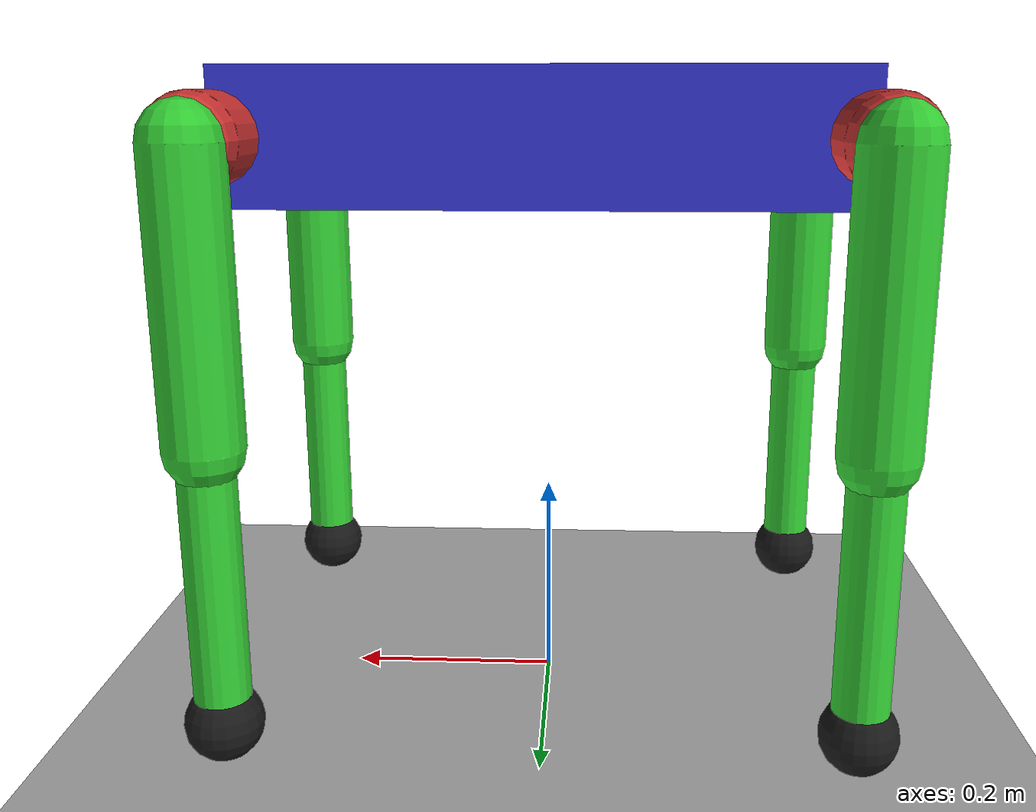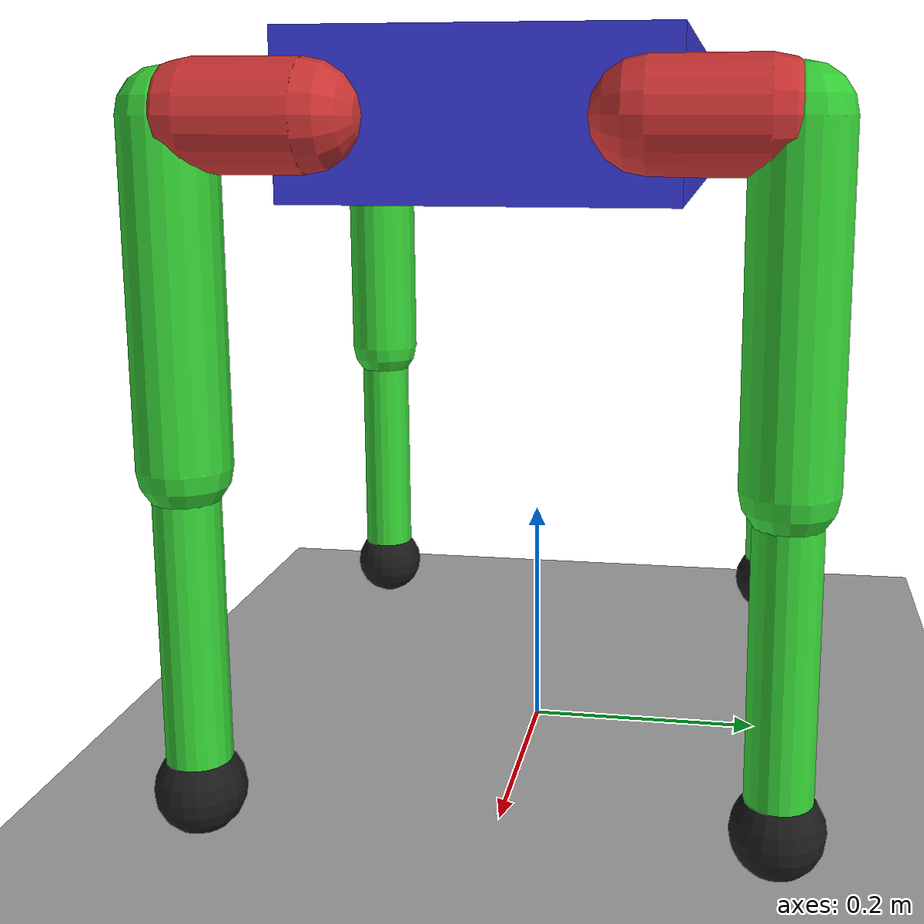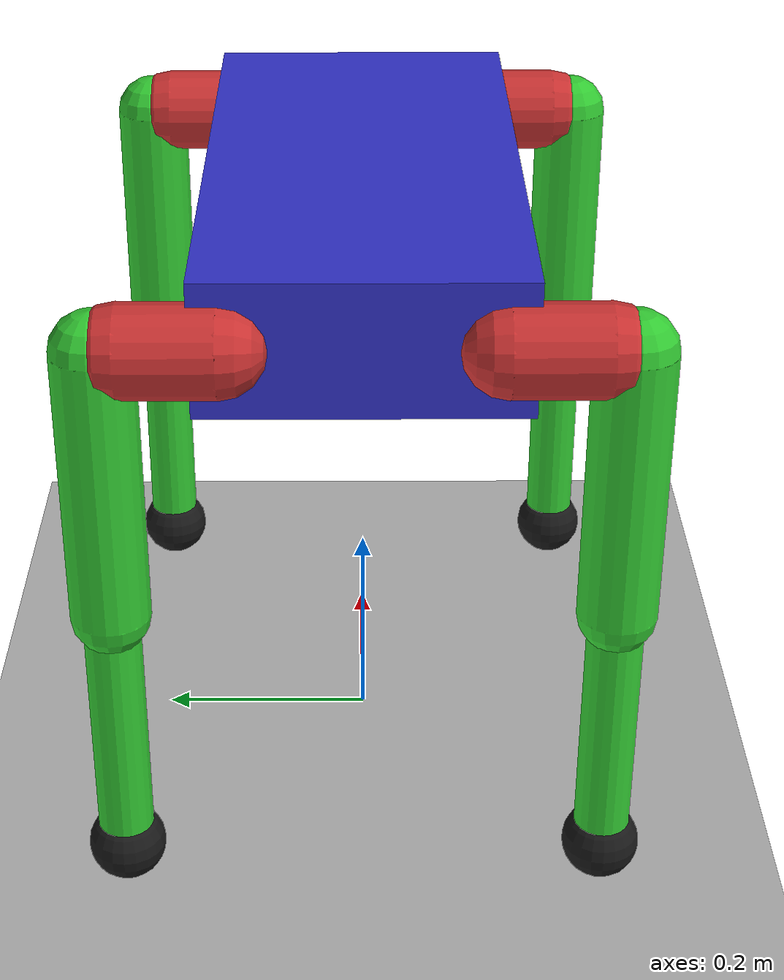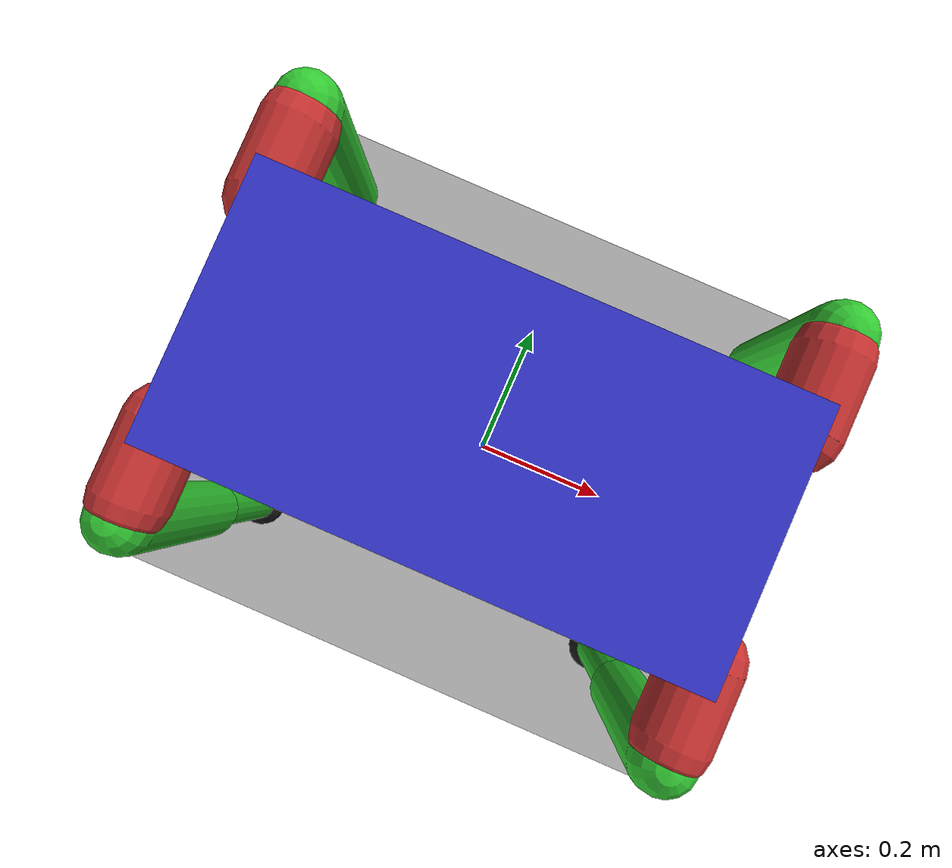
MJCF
<mujoco model="anymal_simplified">
        <compiler angle="radian" coordinate="local" inertiafromgeom="true"/>

        <option timestep="0.001" gravity="0 0 -9.81" iterations="50" solver="Newton" tolerance="1e-10"/>

        <default>
            <geom rgba="0.7 0.7 0.7 1" friction="1.0 0.005 0.0001" condim="3"/>
            <joint damping="1.0" armature="0.01" frictionloss="0.1"/>
            <motor ctrlrange="-200 200" ctrllimited="true"/>
        </default>

        <asset>
            <texture name="grid" type="2d" builtin="checker" width="512" height="512"
                     rgb1=".1 .2 .3" rgb2=".2 .3 .4"/>
            <material name="grid" texture="grid" texrepeat="2 2" texuniform="true" reflectance=".2"/>
            <texture name="skybox" type="skybox" builtin="gradient" rgb1=".4 .6 .8" rgb2="0 0 0"
                     width="800" height="800" mark="random" markrgb="1 1 1"/>
        </asset>

        <worldbody>
            <light pos="0 0 3" dir="0 0 -1" diffuse="0.8 0.8 0.8" specular="0.2 0.2 0.2"/>
            <geom name="floor" size="20 20 .05" type="plane" material="grid"/>

            <!-- ANYmal-like Base -->
            <body name="base" pos="0 0 0.55">
                <freejoint/>
                <inertial pos="0 0 0" mass="16.0" diaginertia="0.5 1.0 1.0"/>
                <geom name="torso" type="box" size="0.28 0.14 0.06" rgba="0.2 0.2 0.8 1"/>

                <!-- LF Leg (Left Front) -->
                <body name="LF_HIP" pos="0.277 0.116 0">
                    <inertial pos="0 0.04 0" mass="1.42" diaginertia="0.01 0.01 0.01"/>
                    <joint name="LF_HAA" type="hinge" axis="1 0 0" range="-0.4 0.4" damping="2.0"/>
                    <geom type="capsule" fromto="0 0 0 0 0.08 0" size="0.04" rgba="0.8 0.2 0.2 1"/>

                    <body name="LF_THIGH" pos="0 0.1 0">
                        <inertial pos="0 0 -0.125" mass="1.634" diaginertia="0.02 0.02 0.001"/>
                        <joint name="LF_HFE" type="hinge" axis="0 1 0" range="-1.5 1.5" damping="2.0"/>
                        <geom type="capsule" fromto="0 0 0 0 0 -0.25" size="0.035" rgba="0.2 0.8 0.2 1"/>

                        <body name="LF_SHANK" pos="0 0 -0.25">
                            <inertial pos="0 0 -0.125" mass="0.207" diaginertia="0.005 0.005 0.0001"/>
                            <joint name="LF_KFE" type="hinge" axis="0 1 0" range="-2.6 -0.3" damping="1.0"/>
                            <geom type="capsule" fromto="0 0 0 0 0 -0.25" size="0.025" rgba="0.2 0.8 0.2 1"/>
                            <geom name="LF_FOOT" type="sphere" pos="0 0 -0.25" size="0.035" rgba="0.1 0.1 0.1 1" friction="1.5 0.01 0.001"/>
                        </body>
                    </body>
                </body>

                <!-- RF Leg (Right Front) -->
                <body name="RF_HIP" pos="0.277 -0.116 0">
                    <inertial pos="0 -0.04 0" mass="1.42" diaginertia="0.01 0.01 0.01"/>
                    <joint name="RF_HAA" type="hinge" axis="1 0 0" range="-0.4 0.4" damping="2.0"/>
                    <geom type="capsule" fromto="0 0 0 0 -0.08 0" size="0.04" rgba="0.8 0.2 0.2 1"/>

                    <body name="RF_THIGH" pos="0 -0.1 0">
                        <inertial pos="0 0 -0.125" mass="1.634" diaginertia="0.02 0.02 0.001"/>
                        <joint name="RF_HFE" type="hinge" axis="0 1 0" range="-1.5 1.5" damping="2.0"/>
                        <geom type="capsule" fromto="0 0 0 0 0 -0.25" size="0.035" rgba="0.2 0.8 0.2 1"/>

                        <body name="RF_SHANK" pos="0 0 -0.25">
                            <inertial pos="0 0 -0.125" mass="0.207" diaginertia="0.005 0.005 0.0001"/>
                            <joint name="RF_KFE" type="hinge" axis="0 1 0" range="-2.6 -0.3" damping="1.0"/>
                            <geom type="capsule" fromto="0 0 0 0 0 -0.25" size="0.025" rgba="0.2 0.8 0.2 1"/>
                            <geom name="RF_FOOT" type="sphere" pos="0 0 -0.25" size="0.035" rgba="0.1 0.1 0.1 1" friction="1.5 0.01 0.001"/>
                        </body>
                    </body>
                </body>

                <!-- LH Leg (Left Hind) -->
                <body name="LH_HIP" pos="-0.277 0.116 0">
                    <inertial pos="0 0.04 0" mass="1.42" diaginertia="0.01 0.01 0.01"/>
                    <joint name="LH_HAA" type="hinge" axis="1 0 0" range="-0.4 0.4" damping="2.0"/>
                    <geom type="capsule" fromto="0 0 0 0 0.08 0" size="0.04" rgba="0.8 0.2 0.2 1"/>

                    <body name="LH_THIGH" pos="0 0.1 0">
                        <inertial pos="0 0 -0.125" mass="1.634" diaginertia="0.02 0.02 0.001"/>
                        <joint name="LH_HFE" type="hinge" axis="0 1 0" range="-1.5 1.5" damping="2.0"/>
                        <geom type="capsule" fromto="0 0 0 0 0 -0.25" size="0.035" rgba="0.2 0.8 0.2 1"/>

                        <body name="LH_SHANK" pos="0 0 -0.25">
                            <inertial pos="0 0 -0.125" mass="0.207" diaginertia="0.005 0.005 0.0001"/>
                            <joint name="LH_KFE" type="hinge" axis="0 1 0" range="-2.6 -0.3" damping="1.0"/>
                            <geom type="capsule" fromto="0 0 0 0 0 -0.25" size="0.025" rgba="0.2 0.8 0.2 1"/>
                            <geom name="LH_FOOT" type="sphere" pos="0 0 -0.25" size="0.035" rgba="0.1 0.1 0.1 1" friction="1.5 0.01 0.001"/>
                        </body>
                    </body>
                </body>

                <!-- RH Leg (Right Hind) -->
                <body name="RH_HIP" pos="-0.277 -0.116 0">
                    <inertial pos="0 -0.04 0" mass="1.42" diaginertia="0.01 0.01 0.01"/>
                    <joint name="RH_HAA" type="hinge" axis="1 0 0" range="-0.4 0.4" damping="2.0"/>
                    <geom type="capsule" fromto="0 0 0 0 -0.08 0" size="0.04" rgba="0.8 0.2 0.2 1"/>

                    <body name="RH_THIGH" pos="0 -0.1 0">
                        <inertial pos="0 0 -0.125" mass="1.634" diaginertia="0.02 0.02 0.001"/>
                        <joint name="RH_HFE" type="hinge" axis="0 1 0" range="-1.5 1.5" damping="2.0"/>
                        <geom type="capsule" fromto="0 0 0 0 0 -0.25" size="0.035" rgba="0.2 0.8 0.2 1"/>

                        <body name="RH_SHANK" pos="0 0 -0.25">
                            <inertial pos="0 0 -0.125" mass="0.207" diaginertia="0.005 0.005 0.0001"/>
                            <joint name="RH_KFE" type="hinge" axis="0 1 0" range="-2.6 -0.3" damping="1.0"/>
                            <geom type="capsule" fromto="0 0 0 0 0 -0.25" size="0.025" rgba="0.2 0.8 0.2 1"/>
                            <geom name="RH_FOOT" type="sphere" pos="0 0 -0.25" size="0.035" rgba="0.1 0.1 0.1 1" friction="1.5 0.01 0.001"/>
                        </body>
                    </body>
                </body>
            </body>
        </worldbody>

        <actuator>
            <!-- Hip Ab/Adduction -->
            <motor name="LF_HAA_motor" joint="LF_HAA" gear="50"/>
            <motor name="RF_HAA_motor" joint="RF_HAA" gear="50"/>
            <motor name="LH_HAA_motor" joint="LH_HAA" gear="50"/>
            <motor name="RH_HAA_motor" joint="RH_HAA" gear="50"/>

            <!-- Hip Flexion/Extension -->
            <motor name="LF_HFE_motor" joint="LF_HFE" gear="150"/>
            <motor name="RF_HFE_motor" joint="RF_HFE" gear="150"/>
            <motor name="LH_HFE_motor" joint="LH_HFE" gear="150"/>
            <motor name="RH_HFE_motor" joint="RH_HFE" gear="150"/>

            <!-- Knee Flexion/Extension -->
            <motor name="LF_KFE_motor" joint="LF_KFE" gear="150"/>
            <motor name="RF_KFE_motor" joint="RF_KFE" gear="150"/>
            <motor name="LH_KFE_motor" joint="LH_KFE" gear="150"/>
            <motor name="RH_KFE_motor" joint="RH_KFE" gear="150"/>
        </actuator>

        <sensor>
            <!-- IMU -->
            <gyro name="base_gyro" site="base"/>
            <accelerometer name="base_accel" site="base"/>

            <!-- Joint sensors -->
            <jointpos name="LF_HAA_pos" joint="LF_HAA"/>
            <jointvel name="LF_HAA_vel" joint="LF_HAA"/>
        </sensor>
    </mujoco>
